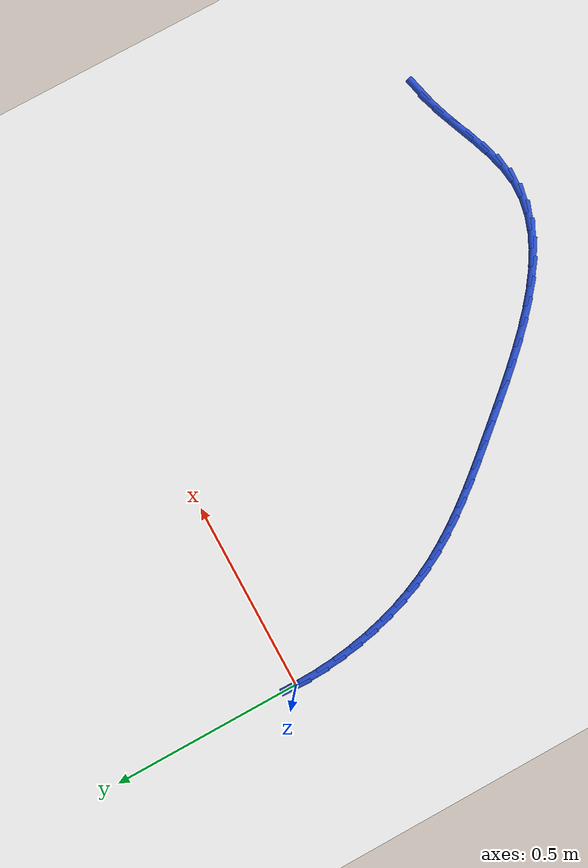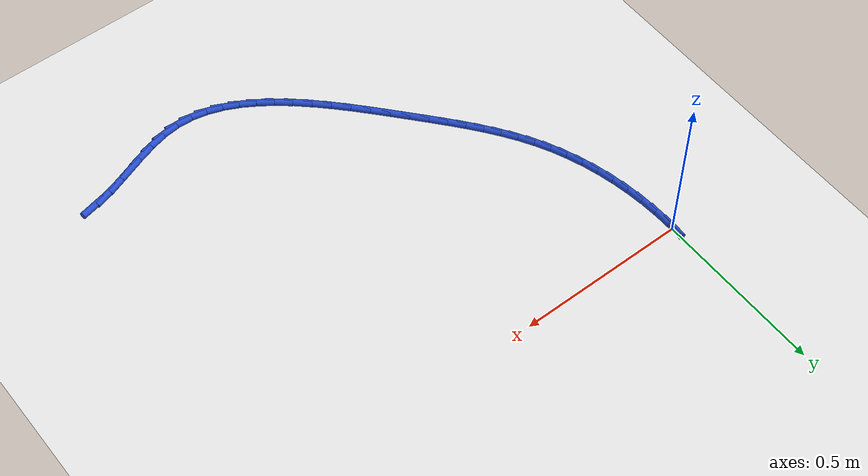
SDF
<sdf version="1.6">
 <world name="default">
  <model name="ground_plane">
   <static>1</static>
   <link name="link">
    <collision name="collision">
     <geometry><plane><normal>0 0 1</normal><size>100 100</size></plane></geometry>
     <surface><friction><ode><mu>100</mu><mu2>50</mu2></ode></friction></surface>
    </collision>
    <visual name="visual">
     <cast_shadows>0</cast_shadows>
     <geometry><plane><normal>0 0 1</normal><size>100 100</size></plane></geometry>
     <material>
      <script><uri>file://media/materials/scripts/gazebo.material</uri><name>Gazebo/WhiteGlow</name></script>
     </material>
    </visual>
   </link>
  </model>
  <model name="line">
   <link name="link_0">
    <pose>2.42861286636753e-17 6.938893903907228e-17 0.01 0 1.57 1.533376814397982</pose>
    <collision name="collision">
     <geometry><cylinder><radius>0.01</radius><length>0.08</length></cylinder></geometry>
    </collision>
    <visual name="visual">
     <material>
      <script><name>Gazebo/Blue</name><uri>file://media/materials/scripts/gazebo.material</uri></script>
     </material>
     <geometry><cylinder><radius>0.01</radius><length>0.08</length></cylinder></geometry>
    </visual>
   </link>
   <link name="link_114">
    <pose>1.188024677883672 -1.0152268238220783 0.01 0 1.57 0.22579544968021023</pose>
    <collision name="collision">
     <geometry><cylinder><radius>0.01</radius><length>0.08</length></cylinder></geometry>
    </collision>
    <visual name="visual">
     <material>
      <script><name>Gazebo/Blue</name><uri>file://media/materials/scripts/gazebo.material</uri></script>
     </material>
     <geometry><cylinder><radius>0.01</radius><length>0.08</length></cylinder></geometry>
    </visual>
   </link>
   <link name="link_115">
    <pose>1.1398543854102814 -1.0262921489374468 0.01 0 1.57 0.3149908373540075</pose>
    <collision name="collision">
     <geometry><cylinder><radius>0.01</radius><length>0.08</length></cylinder></geometry>
    </collision>
    <visual name="visual">
     <material>
      <script><name>Gazebo/Blue</name><uri>file://media/materials/scripts/gazebo.material</uri></script>
     </material>
     <geometry><cylinder><radius>0.01</radius><length>0.08</length></cylinder></geometry>
    </visual>
   </link>
   <link name="link_116">
    <pose>1.091348652370933 -1.0420972234398191 0.01 0 1.57 0.3593186445592118</pose>
    <collision name="collision">
     <geometry><cylinder><radius>0.01</radius><length>0.08</length></cylinder></geometry>
    </collision>
    <visual name="visual">
     <material>
      <script><name>Gazebo/Blue</name><uri>file://media/materials/scripts/gazebo.material</uri></script>
     </material>
     <geometry><cylinder><radius>0.01</radius><length>0.08</length></cylinder></geometry>
    </visual>
   </link>
   <link name="link_117">
    <pose>1.0427038617501823 -1.0603694307826137 0.01 0 1.57 0.36271079567749837</pose>
    <collision name="collision">
     <geometry><cylinder><radius>0.01</radius><length>0.08</length></cylinder></geometry>
    </collision>
    <visual name="visual">
     <material>
      <script><name>Gazebo/Blue</name><uri>file://media/materials/scripts/gazebo.material</uri></script>
     </material>
     <geometry><cylinder><radius>0.01</radius><length>0.08</length></cylinder></geometry>
    </visual>
   </link>
   <link name="link_118">
    <pose>0.9941202814415946 -1.0788069422192692 0.01 0 1.57 0.32535237424503366</pose>
    <collision name="collision">
     <geometry><cylinder><radius>0.01</radius><length>0.08</length></cylinder></geometry>
    </collision>
    <visual name="visual">
     <material>
      <script><name>Gazebo/Blue</name><uri>file://media/materials/scripts/gazebo.material</uri></script>
     </material>
     <geometry><cylinder><radius>0.01</radius><length>0.08</length></cylinder></geometry>
    </visual>
   </link>
   <link name="link_119">
    <pose>0.9457981793387381 -1.0951079290032228 0.01 0 1.57 0.24296285530216954</pose>
    <collision name="collision">
     <geometry><cylinder><radius>0.01</radius><length>0.08</length></cylinder></geometry>
    </collision>
    <visual name="visual">
     <material>
      <script><name>Gazebo/Blue</name><uri>file://media/materials/scripts/gazebo.material</uri></script>
     </material>
     <geometry><cylinder><radius>0.01</radius><length>0.08</length></cylinder></geometry>
    </visual>
   </link>
   <link name="link_120">
    <pose>0.8979378233351779 -1.1069705623879131 0.01 0 1.57 0.10867791017385854</pose>
    <collision name="collision">
     <geometry><cylinder><radius>0.01</radius><length>0.08</length></cylinder></geometry>
    </collision>
    <visual name="visual">
     <material>
      <script><name>Gazebo/Blue</name><uri>file://media/materials/scripts/gazebo.material</uri></script>
     </material>
     <geometry><cylinder><radius>0.01</radius><length>0.08</length></cylinder></geometry>
    </visual>
   </link>
   <link name="link_121">
    <pose>0.8507377853215705 -1.1121204547960921 0.01 0 1.57 -0.056521974919145415</pose>
    <collision name="collision">
     <geometry><cylinder><radius>0.01</radius><length>0.08</length></cylinder></geometry>
    </collision>
    <visual name="visual">
     <material>
      <script><name>Gazebo/Blue</name><uri>file://media/materials/scripts/gazebo.material</uri></script>
     </material>
     <geometry><cylinder><radius>0.01</radius><length>0.08</length></cylinder></geometry>
    </visual>
   </link>
   <link name="link_122">
    <pose>0.8043217964989634 -1.1094941340457392 0.01 0 1.57 -0.2117293059381202</pose>
    <collision name="collision">
     <geometry><cylinder><radius>0.01</radius><length>0.08</length></cylinder></geometry>
    </collision>
    <visual name="visual">
     <material>
      <script><name>Gazebo/Blue</name><uri>file://media/materials/scripts/gazebo.material</uri></script>
     </material>
     <geometry><cylinder><radius>0.01</radius><length>0.08</length></cylinder></geometry>
    </visual>
   </link>
   <link name="link_123">
    <pose>0.7587108746402274 -1.0996900216669572 0.01 0 1.57 -0.34827598006246824</pose>
    <collision name="collision">
     <geometry><cylinder><radius>0.01</radius><length>0.08</length></cylinder></geometry>
    </collision>
    <visual name="visual">
     <material>
      <script><name>Gazebo/Blue</name><uri>file://media/materials/scripts/gazebo.material</uri></script>
     </material>
     <geometry><cylinder><radius>0.01</radius><length>0.08</length></cylinder></geometry>
    </visual>
   </link>
   <link name="link_124">
    <pose>0.7139185912370491 -1.0834270193266926 0.01 0 1.57 -0.4640652445597992</pose>
    <collision name="collision">
     <geometry><cylinder><radius>0.01</radius><length>0.08</length></cylinder></geometry>
    </collision>
    <visual name="visual">
     <material>
      <script><name>Gazebo/Blue</name><uri>file://media/materials/scripts/gazebo.material</uri></script>
     </material>
     <geometry><cylinder><radius>0.01</radius><length>0.08</length></cylinder></geometry>
    </visual>
   </link>
   <link name="link_125">
    <pose>0.6699585177811155 -1.0614240286918935 0.01 0 1.57 -0.5598933002124636</pose>
    <collision name="collision">
     <geometry><cylinder><radius>0.01</radius><length>0.08</length></cylinder></geometry>
    </collision>
    <visual name="visual">
     <material>
      <script><name>Gazebo/Blue</name><uri>file://media/materials/scripts/gazebo.material</uri></script>
     </material>
     <geometry><cylinder><radius>0.01</radius><length>0.08</length></cylinder></geometry>
    </visual>
   </link>
   <link name="link_126">
    <pose>0.6268442257641114 -1.0343999514295055 0.01 0 1.57 -0.6379506849779184</pose>
    <collision name="collision">
     <geometry><cylinder><radius>0.01</radius><length>0.08</length></cylinder></geometry>
    </collision>
    <visual name="visual">
     <material>
      <script><name>Gazebo/Blue</name><uri>file://media/materials/scripts/gazebo.material</uri></script>
     </material>
     <geometry><cylinder><radius>0.01</radius><length>0.08</length></cylinder></geometry>
    </visual>
   </link>
   <link name="link_127">
    <pose>0.5845892866777244 -1.0030736892064769 0.01 0 1.57 -0.7007622334379</pose>
    <collision name="collision">
     <geometry><cylinder><radius>0.01</radius><length>0.08</length></cylinder></geometry>
    </collision>
    <visual name="visual">
     <material>
      <script><name>Gazebo/Blue</name><uri>file://media/materials/scripts/gazebo.material</uri></script>
     </material>
     <geometry><cylinder><radius>0.01</radius><length>0.08</length></cylinder></geometry>
    </visual>
   </link>
   <link name="link_128">
    <pose>0.543207272013639 -0.9681641436897537 0.01 0 1.57 -0.7506400853175874</pose>
    <collision name="collision">
     <geometry><cylinder><radius>0.01</radius><length>0.08</length></cylinder></geometry>
    </collision>
    <visual name="visual">
     <material>
      <script><name>Gazebo/Blue</name><uri>file://media/materials/scripts/gazebo.material</uri></script>
     </material>
     <geometry><cylinder><radius>0.01</radius><length>0.08</length></cylinder></geometry>
    </visual>
   </link>
   <link name="link_129">
    <pose>0.5027117532635422 -0.9303902165462825 0.01 0 1.57 -0.7894722946073054</pose>
    <collision name="collision">
     <geometry><cylinder><radius>0.01</radius><length>0.08</length></cylinder></geometry>
    </collision>
    <visual name="visual">
     <material>
      <script><name>Gazebo/Blue</name><uri>file://media/materials/scripts/gazebo.material</uri></script>
     </material>
     <geometry><cylinder><radius>0.01</radius><length>0.08</length></cylinder></geometry>
    </visual>
   </link>
   <link name="link_130">
    <pose>0.46311630191912084 -0.8904708094430119 0.01 0 1.57 -0.8186764675960712</pose>
    <collision name="collision">
     <geometry><cylinder><radius>0.01</radius><length>0.08</length></cylinder></geometry>
    </collision>
    <visual name="visual">
     <material>
      <script><name>Gazebo/Blue</name><uri>file://media/materials/scripts/gazebo.material</uri></script>
     </material>
     <geometry><cylinder><radius>0.01</radius><length>0.08</length></cylinder></geometry>
    </visual>
   </link>
   <link name="link_131">
    <pose>0.4244344894720597 -0.8491248240468872 0.01 0 1.57 -0.8392135051508385</pose>
    <collision name="collision">
     <geometry><cylinder><radius>0.01</radius><length>0.08</length></cylinder></geometry>
    </collision>
    <visual name="visual">
     <material>
      <script><name>Gazebo/Blue</name><uri>file://media/materials/scripts/gazebo.material</uri></script>
     </material>
     <geometry><cylinder><radius>0.01</radius><length>0.08</length></cylinder></geometry>
    </visual>
   </link>
   <link name="link_132">
    <pose>0.38667988741404613 -0.8070711620248565 0.01 0 1.57 -0.8516069172100633</pose>
    <collision name="collision">
     <geometry><cylinder><radius>0.01</radius><length>0.08</length></cylinder></geometry>
    </collision>
    <visual name="visual">
     <material>
      <script><name>Gazebo/Blue</name><uri>file://media/materials/scripts/gazebo.material</uri></script>
     </material>
     <geometry><cylinder><radius>0.01</radius><length>0.08</length></cylinder></geometry>
    </visual>
   </link>
   <link name="link_133">
    <pose>0.349866067236765 -0.7650287250438652 0.01 0 1.57 -0.856212954215588</pose>
    <collision name="collision">
     <geometry><cylinder><radius>0.01</radius><length>0.08</length></cylinder></geometry>
    </collision>
    <visual name="visual">
     <material>
      <script><name>Gazebo/Blue</name><uri>file://media/materials/scripts/gazebo.material</uri></script>
     </material>
     <geometry><cylinder><radius>0.01</radius><length>0.08</length></cylinder></geometry>
    </visual>
   </link>
   <link name="link_134">
    <pose>0.31400980652398164 -0.7236972776649829 0.01 0 1.57 -0.8600077883990317</pose>
    <collision name="collision">
     <geometry><cylinder><radius>0.01</radius><length>0.08</length></cylinder></geometry>
    </collision>
    <visual name="visual">
     <material>
      <script><name>Gazebo/Blue</name><uri>file://media/materials/scripts/gazebo.material</uri></script>
     </material>
     <geometry><cylinder><radius>0.01</radius><length>0.08</length></cylinder></geometry>
    </visual>
   </link>
   <link name="link_135">
    <pose>0.27921164179173075 -0.6832766288909414 0.01 0 1.57 -0.8709687662210014</pose>
    <collision name="collision">
     <geometry><cylinder><radius>0.01</radius><length>0.08</length></cylinder></geometry>
    </collision>
    <visual name="visual">
     <material>
      <script><name>Gazebo/Blue</name><uri>file://media/materials/scripts/gazebo.material</uri></script>
     </material>
     <geometry><cylinder><radius>0.01</radius><length>0.08</length></cylinder></geometry>
    </visual>
   </link>
   <link name="link_136">
    <pose>0.24566184424522255 -0.6434309629807672 0.01 0 1.57 -0.8899234501237766</pose>
    <collision name="collision">
     <geometry><cylinder><radius>0.01</radius><length>0.08</length></cylinder></geometry>
    </collision>
    <visual name="visual">
     <material>
      <script><name>Gazebo/Blue</name><uri>file://media/materials/scripts/gazebo.material</uri></script>
     </material>
     <geometry><cylinder><radius>0.01</radius><length>0.08</length></cylinder></geometry>
    </visual>
   </link>
   <link name="link_137">
    <pose>0.21355508811273857 -0.6037981826280807 0.01 0 1.57 -0.9171964344634944</pose>
    <collision name="collision">
     <geometry><cylinder><radius>0.01</radius><length>0.08</length></cylinder></geometry>
    </collision>
    <visual name="visual">
     <material>
      <script><name>Gazebo/Blue</name><uri>file://media/materials/scripts/gazebo.material</uri></script>
     </material>
     <geometry><cylinder><radius>0.01</radius><length>0.08</length></cylinder></geometry>
    </visual>
   </link>
   <link name="link_138">
    <pose>0.18308604762256014 -0.5640161905265019 0.01 0 1.57 -0.952921871830834</pose>
    <collision name="collision">
     <geometry><cylinder><radius>0.01</radius><length>0.08</length></cylinder></geometry>
    </collision>
    <visual name="visual">
     <material>
      <script><name>Gazebo/Blue</name><uri>file://media/materials/scripts/gazebo.material</uri></script>
     </material>
     <geometry><cylinder><radius>0.01</radius><length>0.08</length></cylinder></geometry>
    </visual>
   </link>
   <link name="link_139">
    <pose>0.15444939700296703 -0.5237228893696487 0.01 0 1.57 -0.9969658473393616</pose>
    <collision name="collision">
     <geometry><cylinder><radius>0.01</radius><length>0.08</length></cylinder></geometry>
    </collision>
    <visual name="visual">
     <material>
      <script><name>Gazebo/Blue</name><uri>file://media/materials/scripts/gazebo.material</uri></script>
     </material>
     <geometry><cylinder><radius>0.01</radius><length>0.08</length></cylinder></geometry>
    </visual>
   </link>
   <link name="link_140">
    <pose>0.12783981048224116 -0.48255618185114196 0.01 0 1.57 -1.048845489865908</pose>
    <collision name="collision">
     <geometry><cylinder><radius>0.01</radius><length>0.08</length></cylinder></geometry>
    </collision>
    <visual name="visual">
     <material>
      <script><name>Gazebo/Blue</name><uri>file://media/materials/scripts/gazebo.material</uri></script>
     </material>
     <geometry><cylinder><radius>0.01</radius><length>0.08</length></cylinder></geometry>
    </visual>
   </link>
   <link name="link_141">
    <pose>0.10345196228866241 -0.4401539706645993 0.01 0 1.57 -1.1076472950754845</pose>
    <collision name="collision">
     <geometry><cylinder><radius>0.01</radius><length>0.08</length></cylinder></geometry>
    </collision>
    <visual name="visual">
     <material>
      <script><name>Gazebo/Blue</name><uri>file://media/materials/scripts/gazebo.material</uri></script>
     </material>
     <geometry><cylinder><radius>0.01</radius><length>0.08</length></cylinder></geometry>
    </visual>
   </link>
   <link name="link_142">
    <pose>0.08148014505362548 -0.39615550827354923 0.01 0 1.57 -1.1696159153019265</pose>
    <collision name="collision">
     <geometry><cylinder><radius>0.01</radius><length>0.08</length></cylinder></geometry>
    </collision>
    <visual name="visual">
     <material>
      <script><name>Gazebo/Blue</name><uri>file://media/materials/scripts/gazebo.material</uri></script>
     </material>
     <geometry><cylinder><radius>0.01</radius><length>0.08</length></cylinder></geometry>
    </visual>
   </link>
   <link name="link_143">
    <pose>0.06206580461763491 -0.3503869747885022 0.01 0 1.57 -1.22934402867702</pose>
    <collision name="collision">
     <geometry><cylinder><radius>0.01</radius><length>0.08</length></cylinder></geometry>
    </collision>
    <visual name="visual">
     <material>
      <script><name>Gazebo/Blue</name><uri>file://media/materials/scripts/gazebo.material</uri></script>
     </material>
     <geometry><cylinder><radius>0.01</radius><length>0.08</length></cylinder></geometry>
    </visual>
   </link>
   <link name="link_144">
    <pose>0.045243949574498094 -0.3030510360770192 0.01 0 1.57 -1.2867000420899937</pose>
    <collision name="collision">
     <geometry><cylinder><radius>0.01</radius><length>0.08</length></cylinder></geometry>
    </collision>
    <visual name="visual">
     <material>
      <script><name>Gazebo/Blue</name><uri>file://media/materials/scripts/gazebo.material</uri></script>
     </material>
     <geometry><cylinder><radius>0.01</radius><length>0.08</length></cylinder></geometry>
    </visual>
   </link>
   <link name="link_145">
    <pose>0.031036811842686765 -0.2543955511738702 0.01 0 1.57 -1.3421903759531122</pose>
    <collision name="collision">
     <geometry><cylinder><radius>0.01</radius><length>0.08</length></cylinder></geometry>
    </collision>
    <visual name="visual">
     <material>
      <script><name>Gazebo/Blue</name><uri>file://media/materials/scripts/gazebo.material</uri></script>
     </material>
     <geometry><cylinder><radius>0.01</radius><length>0.08</length></cylinder></geometry>
    </visual>
   </link>
   <link name="link_146">
    <pose>0.019466623340671656 -0.20466837911382124 0.01 0 1.57 -1.3963113250851402</pose>
    <collision name="collision">
     <geometry><cylinder><radius>0.01</radius><length>0.08</length></cylinder></geometry>
    </collision>
    <visual name="visual">
     <material>
      <script><name>Gazebo/Blue</name><uri>file://media/materials/scripts/gazebo.material</uri></script>
     </material>
     <geometry><cylinder><radius>0.01</radius><length>0.08</length></cylinder></geometry>
    </visual>
   </link>
   <link name="link_147">
    <pose>0.01055561598692423 -0.15411737893164143 0.01 0 1.57 -1.4495484370630427</pose>
    <collision name="collision">
     <geometry><cylinder><radius>0.01</radius><length>0.08</length></cylinder></geometry>
    </collision>
    <visual name="visual">
     <material>
      <script><name>Gazebo/Blue</name><uri>file://media/materials/scripts/gazebo.material</uri></script>
     </material>
     <geometry><cylinder><radius>0.01</radius><length>0.08</length></cylinder></geometry>
    </visual>
   </link>
   <link name="link_148">
    <pose>0.004326021699915767 -0.10299040966209982 0.01 0 1.57 -1.5023784762807884</pose>
    <collision name="collision">
     <geometry><cylinder><radius>0.01</radius><length>0.08</length></cylinder></geometry>
    </collision>
    <visual name="visual">
     <material>
      <script><name>Gazebo/Blue</name><uri>file://media/materials/scripts/gazebo.material</uri></script>
     </material>
     <geometry><cylinder><radius>0.01</radius><length>0.08</length></cylinder></geometry>
    </visual>
   </link>
   <link name="link_149">
    <pose>0.0008000723981172568 -0.05153533033996266 0.01 0 1.57 -1.5552728378601621</pose>
    <collision name="collision">
     <geometry><cylinder><radius>0.01</radius><length>0.08</length></cylinder></geometry>
    </collision>
    <visual name="visual">
     <material>
      <script><name>Gazebo/Blue</name><uri>file://media/materials/scripts/gazebo.material</uri></script>
     </material>
     <geometry><cylinder><radius>0.01</radius><length>0.08</length></cylinder></geometry>
    </visual>
   </link>
   <link name="link_150">
    <pose>1.0408340855860843e-17 1.3877787807814457e-16 0.01 0 1.57 1.5328911352714774</pose>
    <collision name="collision">
     <geometry><cylinder><radius>0.01</radius><length>0.08</length></cylinder></geometry>
    </collision>
    <visual name="visual">
     <material>
      <script><name>Gazebo/Blue</name><uri>file://media/materials/scripts/gazebo.material</uri></script>
     </material>
     <geometry><cylinder><radius>0.01</radius><length>0.08</length></cylinder></geometry>
    </visual>
   </link>
  </model>
 </world>
</sdf>
